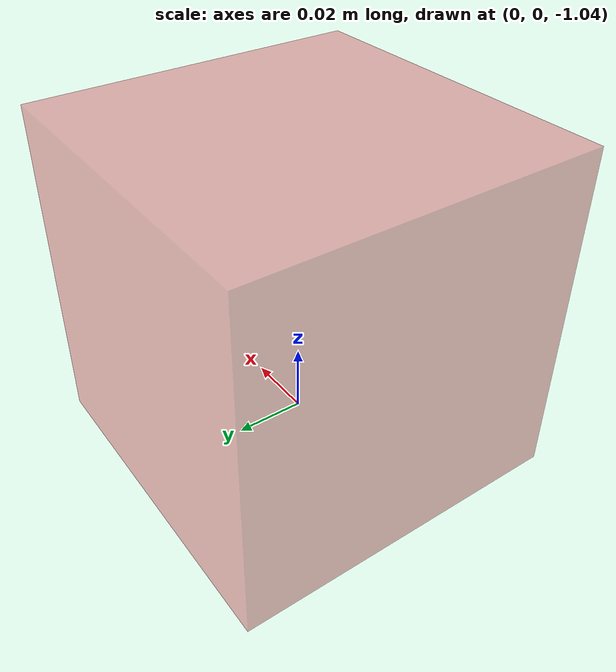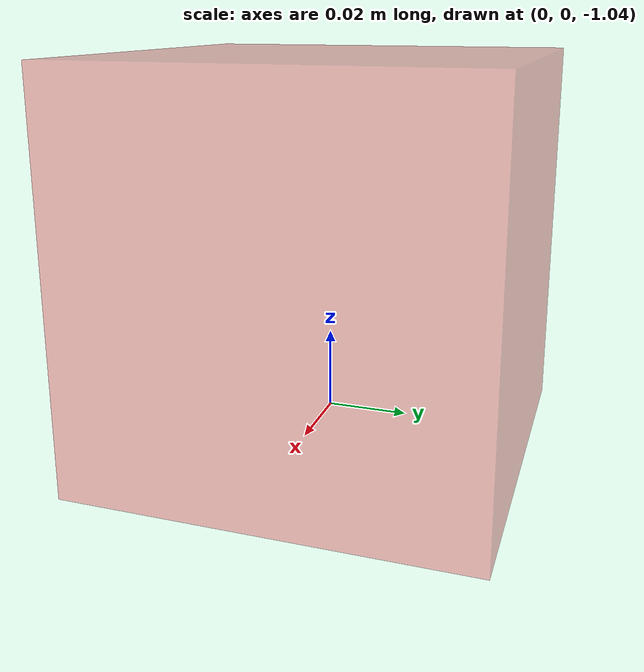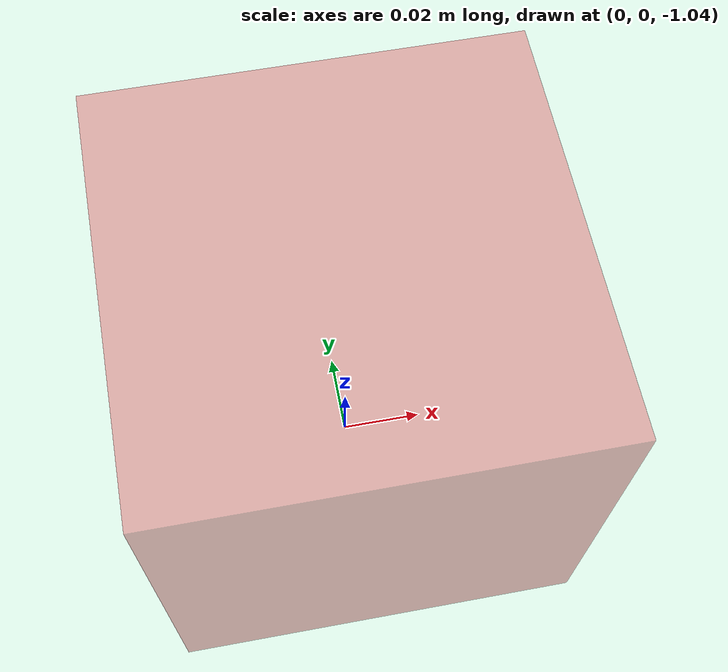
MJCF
<mujoco model="empty_arena">
  <asset>
    <texture builtin="gradient" height="256" rgb1="0.98 0.98 1.00" rgb2="0.06 0.08 0.12" type="skybox" width="256" />
  </asset>
  <worldbody>
    <light pos="2.0 -2.0 2.0" dir="0.01 0.01 -1" specular="0.3 0.3 0.3" ambient="0.3 0.3 0.3" diffuse="0.3 0.3 0.3" directional="true" castshadow="false" />

  <body mocap="true" pos="0 0 -1" name="left_eef_target"><geom rgba="0.898 0.420 0.435 0.5" conaffinity="0" contype="0" type="box" size="0.05 0.05 0.05" pos="0 0 0" group="2" name="left_eef_target_box" /><geom rgba="0.898 0.420 0.435 0.8" conaffinity="0" contype="0" type="sphere" size="0.01" pos="0 0 0" group="2" name="left_eef_target_sphere" /></body><body mocap="true" pos="0 0 -1" name="right_eef_target"><geom rgba="0.208 0.314 0.439 0.5" conaffinity="0" contype="0" type="box" size="0.05 0.05 0.05" pos="0 0 0" group="2" name="right_eef_target_box" /><geom rgba="0.208 0.314 0.439 0.8" conaffinity="0" contype="0" type="sphere" size="0.01" pos="0 0 0" group="2" name="right_eef_target_sphere" /></body></worldbody>
<actuator /><sensor /><tendon /><equality /><contact /></mujoco>
